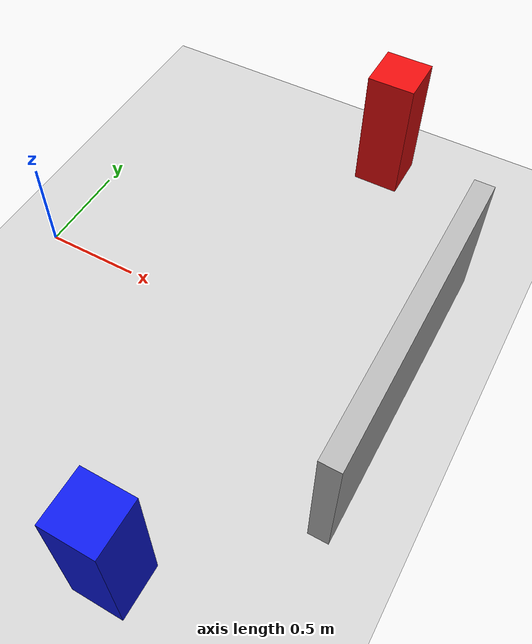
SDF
<?xml version="1.0"?>
<sdf version="1.6">
  <world name="default">
    <scene>
      <shadows>false</shadows>
    </scene>
    <include>
      <uri>model://ground_plane</uri>
    </include>
    <include>
      <uri>model://sun</uri>
    </include>
    <plugin name="gazebo_ros_state" filename="libgazebo_ros_state.so">
      <update_rate>20</update_rate>
    </plugin>
    <model name="end_wall">
      <static>true</static>
      <pose>2.0 0.0 0.35 0 0 0</pose>
      <link name="body">
        <visual name="box">
          <geometry>
            <box>
              <size>0.1 1.6 0.7</size>
            </box>
          </geometry>
          <material>
            <ambient>0.7 0.7 0.7 1</ambient>
            <diffuse>0.7 0.7 0.7 1</diffuse>
          </material>
        </visual>
        <collision name="box">
          <geometry>
            <box>
              <size>0.1 1.6 0.7</size>
            </box>
          </geometry>
        </collision>
      </link>
    </model>
    <model name="left_marker">
      <static>true</static>
      <pose>1.35 1.35 0.35 0 0 0</pose>
      <link name="body">
        <visual name="box">
          <geometry>
            <box>
              <size>0.25 0.25 0.7</size>
            </box>
          </geometry>
          <material>
            <ambient>0.9 0.05 0.05 1</ambient>
            <diffuse>0.9 0.05 0.05 1</diffuse>
          </material>
        </visual>
        <collision name="box">
          <geometry>
            <box>
              <size>0.25 0.25 0.7</size>
            </box>
          </geometry>
        </collision>
      </link>
    </model>
    <model name="right_marker">
      <static>true</static>
      <pose>1.35 -1.35 0.35 0 0 0</pose>
      <link name="body">
        <visual name="box">
          <geometry>
            <box>
              <size>0.25 0.25 0.7</size>
            </box>
          </geometry>
          <material>
            <ambient>0.05 0.1 0.9 1</ambient>
            <diffuse>0.05 0.1 0.9 1</diffuse>
          </material>
        </visual>
        <collision name="box">
          <geometry>
            <box>
              <size>0.25 0.25 0.7</size>
            </box>
          </geometry>
        </collision>
      </link>
    </model>
  </world>
</sdf>
